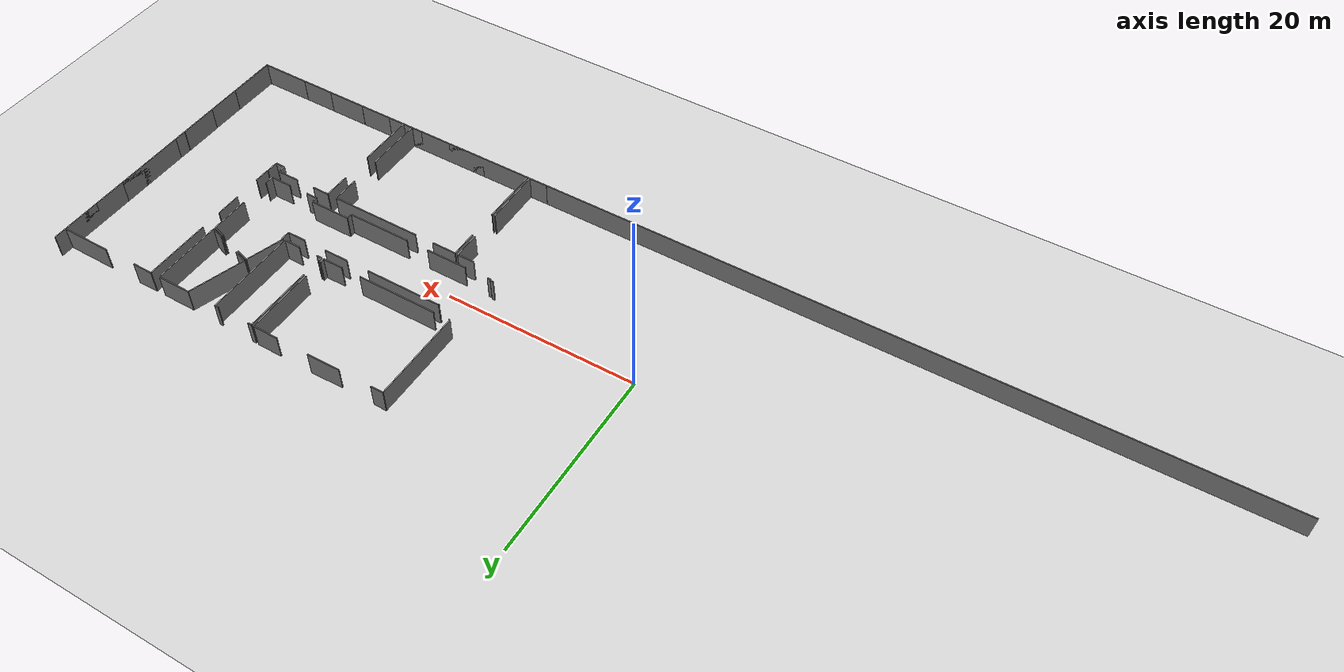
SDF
<sdf version="1.6">
 <world name="default">
  <model name="ground_plane">
   <static>1</static>
   <link name="link">
    <collision name="collision">
     <geometry><plane><normal>0 0 1</normal><size>100 100</size></plane></geometry>
     <surface><friction><ode><mu>100</mu><mu2>50</mu2></ode></friction></surface>
    </collision>
    <visual name="visual">
     <cast_shadows>0</cast_shadows>
     <geometry><plane><normal>0 0 1</normal><size>100 100</size></plane></geometry>
     <material>
      <script><uri>file://media/materials/scripts/gazebo.material</uri><name>Gazebo/Grey</name></script>
     </material>
    </visual>
   </link>
  </model>
  <model name="50056457">
   <static>1</static>
   <link name="Wall_172">
    <collision name="Wall_172_Collision">
     <geometry><box><size>1.95607429931 0.1 2.5</size></box></geometry>
     <pose>0.978037149657 0 1.25 0 0 0</pose>
    </collision>
    <visual name="Wall_172_Visual">
     <pose>0.978037149657 0 1.25 0 0 0</pose>
     <geometry><box><size>1.95607429931 0.1 2.5</size></box></geometry>
     <material>
      <script><uri>file://media/materials/scripts/gazebo.material</uri><name>Gazebo/Grey</name></script>
      <ambient>1 1 1 1</ambient>
     </material>
    </visual>
    <pose>75.9082862539 -30.0258336651 0 0 0 3.14159265359</pose>
   </link>
   <link name="Wall_180">
    <collision name="Wall_180_Collision">
     <geometry><box><size>1.83410551993 0.1 2.5</size></box></geometry>
     <pose>0.917052759967 0 1.25 0 0 0</pose>
    </collision>
    <visual name="Wall_180_Visual">
     <pose>0.917052759967 0 1.25 0 0 0</pose>
     <geometry><box><size>1.83410551993 0.1 2.5</size></box></geometry>
     <material>
      <script><uri>file://media/materials/scripts/gazebo.material</uri><name>Gazebo/Grey</name></script>
      <ambient>1 1 1 1</ambient>
     </material>
    </visual>
    <pose>74.0196335855 -17.9668482082 0 0 0 0.0</pose>
   </link>
   <link name="Wall_181">
    <collision name="Wall_181_Collision">
     <geometry><box><size>2.77750014823 0.1 2.5</size></box></geometry>
     <pose>1.38875007411 0 1.25 0 0 0</pose>
    </collision>
    <visual name="Wall_181_Visual">
     <pose>1.38875007411 0 1.25 0 0 0</pose>
     <geometry><box><size>2.77750014823 0.1 2.5</size></box></geometry>
     <material>
      <script><uri>file://media/materials/scripts/gazebo.material</uri><name>Gazebo/Grey</name></script>
      <ambient>1 1 1 1</ambient>
     </material>
    </visual>
    <pose>75.8537391054 -17.9668482082 0 0 0 -1.57079632679</pose>
   </link>
   <link name="Wall_182">
    <collision name="Wall_182_Collision">
     <geometry><box><size>6.07293498088 0.1 2.5</size></box></geometry>
     <pose>3.03646749044 0 1.25 0 0 0</pose>
    </collision>
    <visual name="Wall_182_Visual">
     <pose>3.03646749044 0 1.25 0 0 0</pose>
     <geometry><box><size>6.07293498088 0.1 2.5</size></box></geometry>
     <material>
      <script><uri>file://media/materials/scripts/gazebo.material</uri><name>Gazebo/Grey</name></script>
      <ambient>1 1 1 1</ambient>
     </material>
    </visual>
    <pose>75.8537391054 -23.9531436606 0 0 0 -1.56181419835</pose>
   </link>
   <link name="Wall_228">
    <collision name="Wall_228_Collision">
     <geometry><box><size>2.24964637524 0.1 2.5</size></box></geometry>
     <pose>1.12482318762 0 1.25 0 0 0</pose>
    </collision>
    <visual name="Wall_228_Visual">
     <pose>1.12482318762 0 1.25 0 0 0</pose>
     <geometry><box><size>2.24964637524 0.1 2.5</size></box></geometry>
     <material>
      <script><uri>file://media/materials/scripts/gazebo.material</uri><name>Gazebo/Grey</name></script>
      <ambient>1 1 1 1</ambient>
     </material>
    </visual>
    <pose>97.6016194743 -16.9924531818 0 0 0 3.14159265359</pose>
   </link>
   <link name="Wall_229">
    <collision name="Wall_229_Collision">
     <geometry><box><size>1.20393349314 0.1 2.5</size></box></geometry>
     <pose>0.601966746568 0 1.25 0 0 0</pose>
    </collision>
    <visual name="Wall_229_Visual">
     <pose>0.601966746568 0 1.25 0 0 0</pose>
     <geometry><box><size>1.20393349314 0.1 2.5</size></box></geometry>
     <material>
      <script><uri>file://media/materials/scripts/gazebo.material</uri><name>Gazebo/Grey</name></script>
      <ambient>1 1 1 1</ambient>
     </material>
    </visual>
    <pose>93.2261589152 -16.9924531818 0 0 0 3.14159265359</pose>
   </link>
   <link name="Wall_230">
    <collision name="Wall_230_Collision">
     <geometry><box><size>0.604592463346 0.1 2.5</size></box></geometry>
     <pose>0.302296231673 0 1.25 0 0 0</pose>
    </collision>
    <visual name="Wall_230_Visual">
     <pose>0.302296231673 0 1.25 0 0 0</pose>
     <geometry><box><size>0.604592463346 0.1 2.5</size></box></geometry>
     <material>
      <script><uri>file://media/materials/scripts/gazebo.material</uri><name>Gazebo/Grey</name></script>
      <ambient>1 1 1 1</ambient>
     </material>
    </visual>
    <pose>92.022225422 -16.9924531818 0 0 0 1.57079632679</pose>
   </link>
   <link name="Wall_231">
    <collision name="Wall_231_Collision">
     <geometry><box><size>4.30007707749 0.1 2.5</size></box></geometry>
     <pose>2.15003853875 0 1.25 0 0 0</pose>
    </collision>
    <visual name="Wall_231_Visual">
     <pose>2.15003853875 0 1.25 0 0 0</pose>
     <geometry><box><size>4.30007707749 0.1 2.5</size></box></geometry>
     <material>
      <script><uri>file://media/materials/scripts/gazebo.material</uri><name>Gazebo/Grey</name></script>
      <ambient>1 1 1 1</ambient>
     </material>
    </visual>
    <pose>92.022225422 -16.3878607184 0 0 0 3.14159265359</pose>
   </link>
   <link name="Wall_232">
    <collision name="Wall_232_Collision">
     <geometry><box><size>0.581215113965 0.1 2.5</size></box></geometry>
     <pose>0.290607556982 0 1.25 0 0 0</pose>
    </collision>
    <visual name="Wall_232_Visual">
     <pose>0.290607556982 0 1.25 0 0 0</pose>
     <geometry><box><size>0.581215113965 0.1 2.5</size></box></geometry>
     <material>
      <script><uri>file://media/materials/scripts/gazebo.material</uri><name>Gazebo/Grey</name></script>
      <ambient>1 1 1 1</ambient>
     </material>
    </visual>
    <pose>87.7221483445 -16.3878607184 0 0 0 -1.57079632679</pose>
   </link>
   <link name="Wall_233">
    <collision name="Wall_233_Collision">
     <geometry><box><size>6.72166555144 0.1 2.5</size></box></geometry>
     <pose>3.36083277572 0 1.25 0 0 0</pose>
    </collision>
    <visual name="Wall_233_Visual">
     <pose>3.36083277572 0 1.25 0 0 0</pose>
     <geometry><box><size>6.72166555144 0.1 2.5</size></box></geometry>
     <material>
      <script><uri>file://media/materials/scripts/gazebo.material</uri><name>Gazebo/Grey</name></script>
      <ambient>1 1 1 1</ambient>
     </material>
    </visual>
    <pose>87.7221483445 -16.9690758324 0 0 0 3.14159265359</pose>
   </link>
   <link name="Wall_234">
    <collision name="Wall_234_Collision">
     <geometry><box><size>4.32938346476 0.1 2.5</size></box></geometry>
     <pose>2.16469173238 0 1.25 0 0 0</pose>
    </collision>
    <visual name="Wall_234_Visual">
     <pose>2.16469173238 0 1.25 0 0 0</pose>
     <geometry><box><size>4.32938346476 0.1 2.5</size></box></geometry>
     <material>
      <script><uri>file://media/materials/scripts/gazebo.material</uri><name>Gazebo/Grey</name></script>
      <ambient>1 1 1 1</ambient>
     </material>
    </visual>
    <pose>78.6080313053 -16.9690758324 0 0 0 3.14159265359</pose>
   </link>
   <link name="Wall_235">
    <collision name="Wall_235_Collision">
     <geometry><box><size>0.421808695358 0.1 2.5</size></box></geometry>
     <pose>0.210904347679 0 1.25 0 0 0</pose>
    </collision>
    <visual name="Wall_235_Visual">
     <pose>0.210904347679 0 1.25 0 0 0</pose>
     <geometry><box><size>0.421808695358 0.1 2.5</size></box></geometry>
     <material>
      <script><uri>file://media/materials/scripts/gazebo.material</uri><name>Gazebo/Grey</name></script>
      <ambient>1 1 1 1</ambient>
     </material>
    </visual>
    <pose>71.7708342156 -16.9690758324 0 0 0 3.14159265359</pose>
   </link>
   <link name="Wall_236">
    <collision name="Wall_236_Collision">
     <geometry><box><size>0.108077890618 0.1 2.5</size></box></geometry>
     <pose>0.0540389453089 0 1.25 0 0 0</pose>
    </collision>
    <visual name="Wall_236_Visual">
     <pose>0.0540389453089 0 1.25 0 0 0</pose>
     <geometry><box><size>0.108077890618 0.1 2.5</size></box></geometry>
     <material>
      <script><uri>file://media/materials/scripts/gazebo.material</uri><name>Gazebo/Grey</name></script>
      <ambient>1 1 1 1</ambient>
     </material>
    </visual>
    <pose>71.3490255203 -16.9690758324 0 0 0 1.57079632679</pose>
   </link>
   <link name="Wall_237">
    <collision name="Wall_237_Collision">
     <geometry><box><size>0.314916612317 0.1 2.5</size></box></geometry>
     <pose>0.157458306159 0 1.25 0 0 0</pose>
    </collision>
    <visual name="Wall_237_Visual">
     <pose>0.157458306159 0 1.25 0 0 0</pose>
     <geometry><box><size>0.314916612317 0.1 2.5</size></box></geometry>
     <material>
      <script><uri>file://media/materials/scripts/gazebo.material</uri><name>Gazebo/Grey</name></script>
      <ambient>1 1 1 1</ambient>
     </material>
    </visual>
    <pose>71.3490255203 -16.8609979418 0 0 0 3.14159265359</pose>
   </link>
   <link name="Wall_241">
    <collision name="Wall_241_Collision">
     <geometry><box><size>0.0645418124222 0.1 2.5</size></box></geometry>
     <pose>0.0322709062111 0 1.25 0 0 0</pose>
    </collision>
    <visual name="Wall_241_Visual">
     <pose>0.0322709062111 0 1.25 0 0 0</pose>
     <geometry><box><size>0.0645418124222 0.1 2.5</size></box></geometry>
     <material>
      <script><uri>file://media/materials/scripts/gazebo.material</uri><name>Gazebo/Grey</name></script>
      <ambient>1 1 1 1</ambient>
     </material>
    </visual>
    <pose>73.6296722936 -12.0357775086 0 0 0 1.57079632679</pose>
   </link>
   <link name="Wall_242">
    <collision name="Wall_242_Collision">
     <geometry><box><size>8.07772121664 0.1 2.5</size></box></geometry>
     <pose>4.03886060832 0 1.25 0 0 0</pose>
    </collision>
    <visual name="Wall_242_Visual">
     <pose>4.03886060832 0 1.25 0 0 0</pose>
     <geometry><box><size>8.07772121664 0.1 2.5</size></box></geometry>
     <material>
      <script><uri>file://media/materials/scripts/gazebo.material</uri><name>Gazebo/Grey</name></script>
      <ambient>1 1 1 1</ambient>
     </material>
    </visual>
    <pose>73.6296722936 -11.9712356962 0 0 0 0.0</pose>
   </link>
   <link name="Wall_243">
    <collision name="Wall_243_Collision">
     <geometry><box><size>2.59810440189 0.1 2.5</size></box></geometry>
     <pose>1.29905220094 0 1.25 0 0 0</pose>
    </collision>
    <visual name="Wall_243_Visual">
     <pose>1.29905220094 0 1.25 0 0 0</pose>
     <geometry><box><size>2.59810440189 0.1 2.5</size></box></geometry>
     <material>
      <script><uri>file://media/materials/scripts/gazebo.material</uri><name>Gazebo/Grey</name></script>
      <ambient>1 1 1 1</ambient>
     </material>
    </visual>
    <pose>84.1850537425 -11.9712356962 0 0 0 0.0</pose>
   </link>
   <link name="Wall_244">
    <collision name="Wall_244_Collision">
     <geometry><box><size>1.97589422596 0.1 2.5</size></box></geometry>
     <pose>0.987947112982 0 1.25 0 0 0</pose>
    </collision>
    <visual name="Wall_244_Visual">
     <pose>0.987947112982 0 1.25 0 0 0</pose>
     <geometry><box><size>1.97589422596 0.1 2.5</size></box></geometry>
     <material>
      <script><uri>file://media/materials/scripts/gazebo.material</uri><name>Gazebo/Grey</name></script>
      <ambient>1 1 1 1</ambient>
     </material>
    </visual>
    <pose>89.2525177236 -11.9712356962 0 0 0 0.0</pose>
   </link>
   <link name="Wall_245">
    <collision name="Wall_245_Collision">
     <geometry><box><size>0.978121850199 0.1 2.5</size></box></geometry>
     <pose>0.489060925099 0 1.25 0 0 0</pose>
    </collision>
    <visual name="Wall_245_Visual">
     <pose>0.489060925099 0 1.25 0 0 0</pose>
     <geometry><box><size>0.978121850199 0.1 2.5</size></box></geometry>
     <material>
      <script><uri>file://media/materials/scripts/gazebo.material</uri><name>Gazebo/Grey</name></script>
      <ambient>1 1 1 1</ambient>
     </material>
    </visual>
    <pose>91.2284119496 -11.9712356962 0 0 0 1.57079632679</pose>
   </link>
   <link name="Wall_246">
    <collision name="Wall_246_Collision">
     <geometry><box><size>0.12603440536 0.1 2.5</size></box></geometry>
     <pose>0.0630172026799 0 1.25 0 0 0</pose>
    </collision>
    <visual name="Wall_246_Visual">
     <pose>0.0630172026799 0 1.25 0 0 0</pose>
     <geometry><box><size>0.12603440536 0.1 2.5</size></box></geometry>
     <material>
      <script><uri>file://media/materials/scripts/gazebo.material</uri><name>Gazebo/Grey</name></script>
      <ambient>1 1 1 1</ambient>
     </material>
    </visual>
    <pose>91.2284119496 -10.993113846 0 0 0 3.14159265359</pose>
   </link>
   <link name="Wall_247">
    <collision name="Wall_247_Collision">
     <geometry><box><size>3.96164129137 0.1 2.5</size></box></geometry>
     <pose>1.98082064568 0 1.25 0 0 0</pose>
    </collision>
    <visual name="Wall_247_Visual">
     <pose>1.98082064568 0 1.25 0 0 0</pose>
     <geometry><box><size>3.96164129137 0.1 2.5</size></box></geometry>
     <material>
      <script><uri>file://media/materials/scripts/gazebo.material</uri><name>Gazebo/Grey</name></script>
      <ambient>1 1 1 1</ambient>
     </material>
    </visual>
    <pose>91.1023775442 -10.993113846 0 0 0 1.26954656511</pose>
   </link>
   <link name="Wall_248">
    <collision name="Wall_248_Collision">
     <geometry><box><size>1.44781452431 0.1 2.5</size></box></geometry>
     <pose>0.723907262153 0 1.25 0 0 0</pose>
    </collision>
    <visual name="Wall_248_Visual">
     <pose>0.723907262153 0 1.25 0 0 0</pose>
     <geometry><box><size>1.44781452431 0.1 2.5</size></box></geometry>
     <material>
      <script><uri>file://media/materials/scripts/gazebo.material</uri><name>Gazebo/Grey</name></script>
      <ambient>1 1 1 1</ambient>
     </material>
    </visual>
    <pose>92.2778516555 -7.20987947113 0 0 0 -0.304692667171</pose>
   </link>
   <link name="Wall_249">
    <collision name="Wall_249_Collision">
     <geometry><box><size>1.45301427051 0.1 2.5</size></box></geometry>
     <pose>0.726507135254 0 1.25 0 0 0</pose>
    </collision>
    <visual name="Wall_249_Visual">
     <pose>0.726507135254 0 1.25 0 0 0</pose>
     <geometry><box><size>1.45301427051 0.1 2.5</size></box></geometry>
     <material>
      <script><uri>file://media/materials/scripts/gazebo.material</uri><name>Gazebo/Grey</name></script>
      <ambient>1 1 1 1</ambient>
     </material>
    </visual>
    <pose>96.2135470046 -8.43939252772 0 0 0 -0.284321077831</pose>
   </link>
   <link name="Wall_250">
    <collision name="Wall_250_Collision">
     <geometry><box><size>4.05918873822 0.1 2.5</size></box></geometry>
     <pose>2.02959436911 0 1.25 0 0 0</pose>
    </collision>
    <visual name="Wall_250_Visual">
     <pose>2.02959436911 0 1.25 0 0 0</pose>
     <geometry><box><size>4.05918873822 0.1 2.5</size></box></geometry>
     <material>
      <script><uri>file://media/materials/scripts/gazebo.material</uri><name>Gazebo/Grey</name></script>
      <ambient>1 1 1 1</ambient>
     </material>
    </visual>
    <pose>97.6082261166 -8.84697153215 0 0 0 -1.57079632679</pose>
   </link>
   <link name="Wall_251">
    <collision name="Wall_251_Collision">
     <geometry><box><size>0.924106521366 0.1 2.5</size></box></geometry>
     <pose>0.462053260683 0 1.25 0 0 0</pose>
    </collision>
    <visual name="Wall_251_Visual">
     <pose>0.462053260683 0 1.25 0 0 0</pose>
     <geometry><box><size>0.924106521366 0.1 2.5</size></box></geometry>
     <material>
      <script><uri>file://media/materials/scripts/gazebo.material</uri><name>Gazebo/Grey</name></script>
      <ambient>1 1 1 1</ambient>
     </material>
    </visual>
    <pose>97.6082261166 -16.0683702769 0 0 0 -1.5779456092</pose>
   </link>
   <link name="Wall_252">
    <collision name="Wall_252_Collision">
     <geometry><box><size>2.19425222127 0.1 2.5</size></box></geometry>
     <pose>1.09712611064 0 1.25 0 0 0</pose>
    </collision>
    <visual name="Wall_252_Visual">
     <pose>1.09712611064 0 1.25 0 0 0</pose>
     <geometry><box><size>2.19425222127 0.1 2.5</size></box></geometry>
     <material>
      <script><uri>file://media/materials/scripts/gazebo.material</uri><name>Gazebo/Grey</name></script>
      <ambient>1 1 1 1</ambient>
     </material>
    </visual>
    <pose>86.1961833936 -11.0080211413 0 0 0 3.14159265359</pose>
   </link>
   <link name="Wall_253">
    <collision name="Wall_253_Collision">
     <geometry><box><size>8.41008614045 0.1 2.5</size></box></geometry>
     <pose>4.20504307023 0 1.25 0 0 0</pose>
    </collision>
    <visual name="Wall_253_Visual">
     <pose>4.20504307023 0 1.25 0 0 0</pose>
     <geometry><box><size>8.41008614045 0.1 2.5</size></box></geometry>
     <material>
      <script><uri>file://media/materials/scripts/gazebo.material</uri><name>Gazebo/Grey</name></script>
      <ambient>1 1 1 1</ambient>
     </material>
    </visual>
    <pose>81.9011883486 -11.0080211413 0 0 0 3.14159265359</pose>
   </link>
   <link name="Wall_254">
    <collision name="Wall_254_Collision">
     <geometry><box><size>0.134673860566 0.1 2.5</size></box></geometry>
     <pose>0.067336930283 0 1.25 0 0 0</pose>
    </collision>
    <visual name="Wall_254_Visual">
     <pose>0.067336930283 0 1.25 0 0 0</pose>
     <geometry><box><size>0.134673860566 0.1 2.5</size></box></geometry>
     <material>
      <script><uri>file://media/materials/scripts/gazebo.material</uri><name>Gazebo/Grey</name></script>
      <ambient>1 1 1 1</ambient>
     </material>
    </visual>
    <pose>71.804545031 -11.0080211413 0 0 0 3.14159265359</pose>
   </link>
   <link name="Wall_255">
    <collision name="Wall_255_Collision">
     <geometry><box><size>9.65213487714 0.1 2.5</size></box></geometry>
     <pose>4.82606743857 0 1.25 0 0 0</pose>
    </collision>
    <visual name="Wall_255_Visual">
     <pose>4.82606743857 0 1.25 0 0 0</pose>
     <geometry><box><size>9.65213487714 0.1 2.5</size></box></geometry>
     <material>
      <script><uri>file://media/materials/scripts/gazebo.material</uri><name>Gazebo/Grey</name></script>
      <ambient>1 1 1 1</ambient>
     </material>
    </visual>
    <pose>71.6698711705 -11.0080211413 0 0 0 1.57079632679</pose>
   </link>
   <link name="Wall_256">
    <collision name="Wall_256_Collision">
     <geometry><box><size>1.33996256236 0.1 2.5</size></box></geometry>
     <pose>0.66998128118 0 1.25 0 0 0</pose>
    </collision>
    <visual name="Wall_256_Visual">
     <pose>0.66998128118 0 1.25 0 0 0</pose>
     <geometry><box><size>1.33996256236 0.1 2.5</size></box></geometry>
     <material>
      <script><uri>file://media/materials/scripts/gazebo.material</uri><name>Gazebo/Grey</name></script>
      <ambient>1 1 1 1</ambient>
     </material>
    </visual>
    <pose>71.6698711705 -1.35588626411 0 0 0 0.0</pose>
   </link>
   <link name="Wall_257">
    <collision name="Wall_257_Collision">
     <geometry><box><size>3.48623888644 0.1 2.5</size></box></geometry>
     <pose>1.74311944322 0 1.25 0 0 0</pose>
    </collision>
    <visual name="Wall_257_Visual">
     <pose>1.74311944322 0 1.25 0 0 0</pose>
     <geometry><box><size>3.48623888644 0.1 2.5</size></box></geometry>
     <material>
      <script><uri>file://media/materials/scripts/gazebo.material</uri><name>Gazebo/Grey</name></script>
      <ambient>1 1 1 1</ambient>
     </material>
    </visual>
    <pose>76.4969550155 -1.35588626411 0 0 0 0.0191947651474</pose>
   </link>
   <link name="Wall_258">
    <collision name="Wall_258_Collision">
     <geometry><box><size>2.69505506118 0.1 2.5</size></box></geometry>
     <pose>1.34752753059 0 1.25 0 0 0</pose>
    </collision>
    <visual name="Wall_258_Visual">
     <pose>1.34752753059 0 1.25 0 0 0</pose>
     <geometry><box><size>2.69505506118 0.1 2.5</size></box></geometry>
     <material>
      <script><uri>file://media/materials/scripts/gazebo.material</uri><name>Gazebo/Grey</name></script>
      <ambient>1 1 1 1</ambient>
     </material>
    </visual>
    <pose>83.4947443314 -1.31421359782 0 0 0 -0.00628566742155</pose>
   </link>
   <link name="Wall_259">
    <collision name="Wall_259_Collision">
     <geometry><box><size>7.15956734964 0.1 2.5</size></box></geometry>
     <pose>3.57978367482 0 1.25 0 0 0</pose>
    </collision>
    <visual name="Wall_259_Visual">
     <pose>3.57978367482 0 1.25 0 0 0</pose>
     <geometry><box><size>7.15956734964 0.1 2.5</size></box></geometry>
     <material>
      <script><uri>file://media/materials/scripts/gazebo.material</uri><name>Gazebo/Grey</name></script>
      <ambient>1 1 1 1</ambient>
     </material>
    </visual>
    <pose>86.1897461525 -1.33115370607 0 0 0 -1.57079632679</pose>
   </link>
   <link name="Wall_260">
    <collision name="Wall_260_Collision">
     <geometry><box><size>0.48961144748 0.1 2.5</size></box></geometry>
     <pose>0.24480572374 0 1.25 0 0 0</pose>
    </collision>
    <visual name="Wall_260_Visual">
     <pose>0.24480572374 0 1.25 0 0 0</pose>
     <geometry><box><size>0.48961144748 0.1 2.5</size></box></geometry>
     <material>
      <script><uri>file://media/materials/scripts/gazebo.material</uri><name>Gazebo/Grey</name></script>
      <ambient>1 1 1 1</ambient>
     </material>
    </visual>
    <pose>86.1897461525 -10.5184520129 0 0 0 -1.55764829556</pose>
   </link>
   <link name="Wall_261">
    <collision name="Wall_261_Collision">
     <geometry><box><size>1.74872737437 0.1 2.5</size></box></geometry>
     <pose>0.874363687184 0 1.25 0 0 0</pose>
    </collision>
    <visual name="Wall_261_Visual">
     <pose>0.874363687184 0 1.25 0 0 0</pose>
     <geometry><box><size>1.74872737437 0.1 2.5</size></box></geometry>
     <material>
      <script><uri>file://media/materials/scripts/gazebo.material</uri><name>Gazebo/Grey</name></script>
      <ambient>1 1 1 1</ambient>
     </material>
    </visual>
    <pose>90.8520027443 -11.0192016127 0 0 0 3.14159265359</pose>
   </link>
   <link name="Wall_262">
    <collision name="Wall_262_Collision">
     <geometry><box><size>0.534629816285 0.1 2.5</size></box></geometry>
     <pose>0.267314908142 0 1.25 0 0 0</pose>
    </collision>
    <visual name="Wall_262_Visual">
     <pose>0.267314908142 0 1.25 0 0 0</pose>
     <geometry><box><size>0.534629816285 0.1 2.5</size></box></geometry>
     <material>
      <script><uri>file://media/materials/scripts/gazebo.material</uri><name>Gazebo/Grey</name></script>
      <ambient>1 1 1 1</ambient>
     </material>
    </visual>
    <pose>86.9871170477 -11.0192016127 0 0 0 3.14159265359</pose>
   </link>
   <link name="Wall_263">
    <collision name="Wall_263_Collision">
     <geometry><box><size>0.478896860151 0.1 2.5</size></box></geometry>
     <pose>0.239448430075 0 1.25 0 0 0</pose>
    </collision>
    <visual name="Wall_263_Visual">
     <pose>0.239448430075 0 1.25 0 0 0</pose>
     <geometry><box><size>0.478896860151 0.1 2.5</size></box></geometry>
     <material>
      <script><uri>file://media/materials/scripts/gazebo.material</uri><name>Gazebo/Grey</name></script>
      <ambient>1 1 1 1</ambient>
     </material>
    </visual>
    <pose>86.4524872314 -11.0192016127 0 0 0 1.57079632679</pose>
   </link>
   <link name="Wall_264">
    <collision name="Wall_264_Collision">
     <geometry><box><size>7.18802673149 0.1 2.5</size></box></geometry>
     <pose>3.59401336575 0 1.25 0 0 0</pose>
    </collision>
    <visual name="Wall_264_Visual">
     <pose>3.59401336575 0 1.25 0 0 0</pose>
     <geometry><box><size>7.18802673149 0.1 2.5</size></box></geometry>
     <material>
      <script><uri>file://media/materials/scripts/gazebo.material</uri><name>Gazebo/Grey</name></script>
      <ambient>1 1 1 1</ambient>
     </material>
    </visual>
    <pose>86.4524872314 -8.54476000102 0 0 0 1.57079632679</pose>
   </link>
   <link name="Wall_265">
    <collision name="Wall_265_Collision">
     <geometry><box><size>0.459415735667 0.1 2.5</size></box></geometry>
     <pose>0.229707867833 0 1.25 0 0 0</pose>
    </collision>
    <visual name="Wall_265_Visual">
     <pose>0.229707867833 0 1.25 0 0 0</pose>
     <geometry><box><size>0.459415735667 0.1 2.5</size></box></geometry>
     <material>
      <script><uri>file://media/materials/scripts/gazebo.material</uri><name>Gazebo/Grey</name></script>
      <ambient>1 1 1 1</ambient>
     </material>
    </visual>
    <pose>86.4524872314 -1.35673326953 0 0 0 0.0</pose>
   </link>
   <link name="Wall_266">
    <collision name="Wall_266_Collision">
     <geometry><box><size>0.395382126492 0.1 2.5</size></box></geometry>
     <pose>0.197691063246 0 1.25 0 0 0</pose>
    </collision>
    <visual name="Wall_266_Visual">
     <pose>0.197691063246 0 1.25 0 0 0</pose>
     <geometry><box><size>0.395382126492 0.1 2.5</size></box></geometry>
     <material>
      <script><uri>file://media/materials/scripts/gazebo.material</uri><name>Gazebo/Grey</name></script>
      <ambient>1 1 1 1</ambient>
     </material>
    </visual>
    <pose>90.4273142305 -1.35673326953 0 0 0 0.0</pose>
   </link>
   <link name="Wall_267">
    <collision name="Wall_267_Collision">
     <geometry><box><size>9.66251278639 0.1 2.5</size></box></geometry>
     <pose>4.83125639319 0 1.25 0 0 0</pose>
    </collision>
    <visual name="Wall_267_Visual">
     <pose>4.83125639319 0 1.25 0 0 0</pose>
     <geometry><box><size>9.66251278639 0.1 2.5</size></box></geometry>
     <material>
      <script><uri>file://media/materials/scripts/gazebo.material</uri><name>Gazebo/Grey</name></script>
      <ambient>1 1 1 1</ambient>
     </material>
    </visual>
    <pose>90.822696357 -1.35673326953 0 0 0 -1.5677633236</pose>
   </link>
   <link name="Wall_268">
    <collision name="Wall_268_Collision">
     <geometry><box><size>1.18580757731 0.1 2.5</size></box></geometry>
     <pose>0.592903788655 0 1.25 0 0 0</pose>
    </collision>
    <visual name="Wall_268_Visual">
     <pose>0.592903788655 0 1.25 0 0 0</pose>
     <geometry><box><size>1.18580757731 0.1 2.5</size></box></geometry>
     <material>
      <script><uri>file://media/materials/scripts/gazebo.material</uri><name>Gazebo/Grey</name></script>
      <ambient>1 1 1 1</ambient>
     </material>
    </visual>
    <pose>90.3512531445 -30.0363365322 0 0 0 3.14159265359</pose>
   </link>
   <link name="Wall_269">
    <collision name="Wall_269_Collision">
     <geometry><box><size>4.1211895344 0.1 2.5</size></box></geometry>
     <pose>2.0605947672 0 1.25 0 0 0</pose>
    </collision>
    <visual name="Wall_269_Visual">
     <pose>2.0605947672 0 1.25 0 0 0</pose>
     <geometry><box><size>4.1211895344 0.1 2.5</size></box></geometry>
     <material>
      <script><uri>file://media/materials/scripts/gazebo.material</uri><name>Gazebo/Grey</name></script>
      <ambient>1 1 1 1</ambient>
     </material>
    </visual>
    <pose>85.6949255906 -30.0363365322 0 0 0 3.14159265359</pose>
   </link>
   <link name="Wall_270">
    <collision name="Wall_270_Collision">
     <geometry><box><size>1.90457637024 0.1 2.5</size></box></geometry>
     <pose>0.952288185122 0 1.25 0 0 0</pose>
    </collision>
    <visual name="Wall_270_Visual">
     <pose>0.952288185122 0 1.25 0 0 0</pose>
     <geometry><box><size>1.90457637024 0.1 2.5</size></box></geometry>
     <material>
      <script><uri>file://media/materials/scripts/gazebo.material</uri><name>Gazebo/Grey</name></script>
      <ambient>1 1 1 1</ambient>
     </material>
    </visual>
    <pose>78.0762813074 -30.0363365322 0 0 0 3.14159265359</pose>
   </link>
   <link name="Wall_271">
    <collision name="Wall_271_Collision">
     <geometry><box><size>6.07438401531 0.1 2.5</size></box></geometry>
     <pose>3.03719200766 0 1.25 0 0 0</pose>
    </collision>
    <visual name="Wall_271_Visual">
     <pose>3.03719200766 0 1.25 0 0 0</pose>
     <geometry><box><size>6.07438401531 0.1 2.5</size></box></geometry>
     <material>
      <script><uri>file://media/materials/scripts/gazebo.material</uri><name>Gazebo/Grey</name></script>
      <ambient>1 1 1 1</ambient>
     </material>
    </visual>
    <pose>76.1717049372 -30.0363365322 0 0 0 1.57079632679</pose>
   </link>
   <link name="Wall_272">
    <collision name="Wall_272_Collision">
     <geometry><box><size>2.80680653549 0.1 2.5</size></box></geometry>
     <pose>1.40340326775 0 1.25 0 0 0</pose>
    </collision>
    <visual name="Wall_272_Visual">
     <pose>1.40340326775 0 1.25 0 0 0</pose>
     <geometry><box><size>2.80680653549 0.1 2.5</size></box></geometry>
     <material>
      <script><uri>file://media/materials/scripts/gazebo.material</uri><name>Gazebo/Grey</name></script>
      <ambient>1 1 1 1</ambient>
     </material>
    </visual>
    <pose>76.1717049372 -20.7987261039 0 0 0 1.57079632679</pose>
   </link>
   <link name="Wall_273">
    <collision name="Wall_273_Collision">
     <geometry><box><size>2.60640505493 0.1 2.5</size></box></geometry>
     <pose>1.30320252746 0 1.25 0 0 0</pose>
    </collision>
    <visual name="Wall_273_Visual">
     <pose>1.30320252746 0 1.25 0 0 0</pose>
     <geometry><box><size>2.60640505493 0.1 2.5</size></box></geometry>
     <material>
      <script><uri>file://media/materials/scripts/gazebo.material</uri><name>Gazebo/Grey</name></script>
      <ambient>1 1 1 1</ambient>
     </material>
    </visual>
    <pose>76.1717049372 -17.9919195684 0 0 0 0.0</pose>
   </link>
   <link name="Wall_274">
    <collision name="Wall_274_Collision">
     <geometry><box><size>9.57505738462 0.1 2.5</size></box></geometry>
     <pose>4.78752869231 0 1.25 0 0 0</pose>
    </collision>
    <visual name="Wall_274_Visual">
     <pose>4.78752869231 0 1.25 0 0 0</pose>
     <geometry><box><size>9.57505738462 0.1 2.5</size></box></geometry>
     <material>
      <script><uri>file://media/materials/scripts/gazebo.material</uri><name>Gazebo/Grey</name></script>
      <ambient>1 1 1 1</ambient>
     </material>
    </visual>
    <pose>80.7819553967 -17.9919195684 0 0 0 0.0</pose>
   </link>
   <link name="Wall_275">
    <collision name="Wall_275_Collision">
     <geometry><box><size>2.79850588245 0.1 2.5</size></box></geometry>
     <pose>1.39925294123 0 1.25 0 0 0</pose>
    </collision>
    <visual name="Wall_275_Visual">
     <pose>1.39925294123 0 1.25 0 0 0</pose>
     <geometry><box><size>2.79850588245 0.1 2.5</size></box></geometry>
     <material>
      <script><uri>file://media/materials/scripts/gazebo.material</uri><name>Gazebo/Grey</name></script>
      <ambient>1 1 1 1</ambient>
     </material>
    </visual>
    <pose>90.3570127813 -17.9919195684 0 0 0 -1.57079632679</pose>
   </link>
   <link name="Wall_276">
    <collision name="Wall_276_Collision">
     <geometry><box><size>6.0298342814 0.1 2.5</size></box></geometry>
     <pose>3.0149171407 0 1.25 0 0 0</pose>
    </collision>
    <visual name="Wall_276_Visual">
     <pose>3.0149171407 0 1.25 0 0 0</pose>
     <geometry><box><size>6.0298342814 0.1 2.5</size></box></geometry>
     <material>
      <script><uri>file://media/materials/scripts/gazebo.material</uri><name>Gazebo/Grey</name></script>
      <ambient>1 1 1 1</ambient>
     </material>
    </visual>
    <pose>90.3570127813 -24.0065050016 0 0 0 -1.57175151684</pose>
   </link>
   <link name="Wall_277">
    <collision name="Wall_277_Collision">
     <geometry><box><size>5.14928470393 0.1 2.5</size></box></geometry>
     <pose>2.57464235196 0 1.25 0 0 0</pose>
    </collision>
    <visual name="Wall_277_Visual">
     <pose>2.57464235196 0 1.25 0 0 0</pose>
     <geometry><box><size>5.14928470393 0.1 2.5</size></box></geometry>
     <material>
      <script><uri>file://media/materials/scripts/gazebo.material</uri><name>Gazebo/Grey</name></script>
      <ambient>1 1 1 1</ambient>
     </material>
    </visual>
    <pose>109.569467149 -30.0290522856 0 0 0 3.14159265359</pose>
   </link>
   <link name="Wall_278">
    <collision name="Wall_278_Collision">
     <geometry><box><size>4.14541388919 0.1 2.5</size></box></geometry>
     <pose>2.0727069446 0 1.25 0 0 0</pose>
    </collision>
    <visual name="Wall_278_Visual">
     <pose>2.0727069446 0 1.25 0 0 0</pose>
     <geometry><box><size>4.14541388919 0.1 2.5</size></box></geometry>
     <material>
      <script><uri>file://media/materials/scripts/gazebo.material</uri><name>Gazebo/Grey</name></script>
      <ambient>1 1 1 1</ambient>
     </material>
    </visual>
    <pose>100.91391884 -30.0290522856 0 0 0 3.14159265359</pose>
   </link>
   <link name="Wall_279">
    <collision name="Wall_279_Collision">
     <geometry><box><size>1.85968508339 0.1 2.5</size></box></geometry>
     <pose>0.929842541694 0 1.25 0 0 0</pose>
    </collision>
    <visual name="Wall_279_Visual">
     <pose>0.929842541694 0 1.25 0 0 0</pose>
     <geometry><box><size>1.85968508339 0.1 2.5</size></box></geometry>
     <material>
      <script><uri>file://media/materials/scripts/gazebo.material</uri><name>Gazebo/Grey</name></script>
      <ambient>1 1 1 1</ambient>
     </material>
    </visual>
    <pose>93.2720666085 -30.0290522856 0 0 0 3.14159265359</pose>
   </link>
   <link name="Wall_280">
    <collision name="Wall_280_Collision">
     <geometry><box><size>5.93140950171 0.1 2.5</size></box></geometry>
     <pose>2.96570475085 0 1.25 0 0 0</pose>
    </collision>
    <visual name="Wall_280_Visual">
     <pose>2.96570475085 0 1.25 0 0 0</pose>
     <geometry><box><size>5.93140950171 0.1 2.5</size></box></geometry>
     <material>
      <script><uri>file://media/materials/scripts/gazebo.material</uri><name>Gazebo/Grey</name></script>
      <ambient>1 1 1 1</ambient>
     </material>
    </visual>
    <pose>91.4123815251 -30.0290522856 0 0 0 1.57079632679</pose>
   </link>
   <link name="Wall_281">
    <collision name="Wall_281_Collision">
     <geometry><box><size>2.72515521374 0.1 2.5</size></box></geometry>
     <pose>1.36257760687 0 1.25 0 0 0</pose>
    </collision>
    <visual name="Wall_281_Visual">
     <pose>1.36257760687 0 1.25 0 0 0</pose>
     <geometry><box><size>2.72515521374 0.1 2.5</size></box></geometry>
     <material>
      <script><uri>file://media/materials/scripts/gazebo.material</uri><name>Gazebo/Grey</name></script>
      <ambient>1 1 1 1</ambient>
     </material>
    </visual>
    <pose>91.4123815251 -20.7208016059 0 0 0 1.57079632679</pose>
   </link>
   <link name="Wall_282">
    <collision name="Wall_282_Collision">
     <geometry><box><size>1.80174991318 0.1 2.5</size></box></geometry>
     <pose>0.900874956591 0 1.25 0 0 0</pose>
    </collision>
    <visual name="Wall_282_Visual">
     <pose>0.900874956591 0 1.25 0 0 0</pose>
     <geometry><box><size>1.80174991318 0.1 2.5</size></box></geometry>
     <material>
      <script><uri>file://media/materials/scripts/gazebo.material</uri><name>Gazebo/Grey</name></script>
      <ambient>1 1 1 1</ambient>
     </material>
    </visual>
    <pose>91.4123815251 -17.9956463922 0 0 0 0.0</pose>
   </link>
   <link name="Wall_283">
    <collision name="Wall_283_Collision">
     <geometry><box><size>2.29555406859 0.1 2.5</size></box></geometry>
     <pose>1.1477770343 0 1.25 0 0 0</pose>
    </collision>
    <visual name="Wall_283_Visual">
     <pose>1.1477770343 0 1.25 0 0 0</pose>
     <geometry><box><size>2.29555406859 0.1 2.5</size></box></geometry>
     <material>
      <script><uri>file://media/materials/scripts/gazebo.material</uri><name>Gazebo/Grey</name></script>
      <ambient>1 1 1 1</ambient>
     </material>
    </visual>
    <pose>95.2857372759 -17.9956463922 0 0 0 0.0</pose>
   </link>
   <link name="Wall_284">
    <collision name="Wall_284_Collision">
     <geometry><box><size>0.770944326334 0.1 2.5</size></box></geometry>
     <pose>0.385472163167 0 1.25 0 0 0</pose>
    </collision>
    <visual name="Wall_284_Visual">
     <pose>0.385472163167 0 1.25 0 0 0</pose>
     <geometry><box><size>0.770944326334 0.1 2.5</size></box></geometry>
     <material>
      <script><uri>file://media/materials/scripts/gazebo.material</uri><name>Gazebo/Grey</name></script>
      <ambient>1 1 1 1</ambient>
     </material>
    </visual>
    <pose>97.5812913445 -17.9956463922 0 0 0 -1.57079632679</pose>
   </link>
   <link name="Wall_285">
    <collision name="Wall_285_Collision">
     <geometry><box><size>1.02470714788 0.1 2.5</size></box></geometry>
     <pose>0.512353573939 0 1.25 0 0 0</pose>
    </collision>
    <visual name="Wall_285_Visual">
     <pose>0.512353573939 0 1.25 0 0 0</pose>
     <geometry><box><size>1.02470714788 0.1 2.5</size></box></geometry>
     <material>
      <script><uri>file://media/materials/scripts/gazebo.material</uri><name>Gazebo/Grey</name></script>
      <ambient>1 1 1 1</ambient>
     </material>
    </visual>
    <pose>97.5812913445 -18.7665907185 0 0 0 0.0</pose>
   </link>
   <link name="Wall_286">
    <collision name="Wall_286_Collision">
     <geometry><box><size>1.25865004277 0.1 2.5</size></box></geometry>
     <pose>0.629325021387 0 1.25 0 0 0</pose>
    </collision>
    <visual name="Wall_286_Visual">
     <pose>0.629325021387 0 1.25 0 0 0</pose>
     <geometry><box><size>1.25865004277 0.1 2.5</size></box></geometry>
     <material>
      <script><uri>file://media/materials/scripts/gazebo.material</uri><name>Gazebo/Grey</name></script>
      <ambient>1 1 1 1</ambient>
     </material>
    </visual>
    <pose>98.6059984923 -18.7665907185 0 0 0 1.57079632679</pose>
   </link>
   <link name="Wall_287">
    <collision name="Wall_287_Collision">
     <geometry><box><size>3.99972895827 0.1 2.5</size></box></geometry>
     <pose>1.99986447913 0 1.25 0 0 0</pose>
    </collision>
    <visual name="Wall_287_Visual">
     <pose>1.99986447913 0 1.25 0 0 0</pose>
     <geometry><box><size>3.99972895827 0.1 2.5</size></box></geometry>
     <material>
      <script><uri>file://media/materials/scripts/gazebo.material</uri><name>Gazebo/Grey</name></script>
      <ambient>1 1 1 1</ambient>
     </material>
    </visual>
    <pose>109.613680831 -17.5079406757 0 0 0 -1.57079632679</pose>
   </link>
   <link name="Wall_288">
    <collision name="Wall_288_Collision">
     <geometry><box><size>5.01192604856 0.1 2.5</size></box></geometry>
     <pose>2.50596302428 0 1.25 0 0 0</pose>
    </collision>
    <visual name="Wall_288_Visual">
     <pose>2.50596302428 0 1.25 0 0 0</pose>
     <geometry><box><size>5.01192604856 0.1 2.5</size></box></geometry>
     <material>
      <script><uri>file://media/materials/scripts/gazebo.material</uri><name>Gazebo/Grey</name></script>
      <ambient>1 1 1 1</ambient>
     </material>
    </visual>
    <pose>109.613680831 -25.0173212607 0 0 0 -1.57961813613</pose>
   </link>
   <link name="Wall_289">
    <collision name="Wall_289_Collision">
     <geometry><box><size>1.57271964968 0.1 2.5</size></box></geometry>
     <pose>0.786359824839 0 1.25 0 0 0</pose>
    </collision>
    <visual name="Wall_289_Visual">
     <pose>0.786359824839 0 1.25 0 0 0</pose>
     <geometry><box><size>1.57271964968 0.1 2.5</size></box></geometry>
     <material>
      <script><uri>file://media/materials/scripts/gazebo.material</uri><name>Gazebo/Grey</name></script>
      <ambient>1 1 1 1</ambient>
     </material>
    </visual>
    <pose>98.6444525381 -17.457120351 0 0 0 1.57079632679</pose>
   </link>
   <link name="Wall_290">
    <collision name="Wall_290_Collision">
     <geometry><box><size>2.58810973802 0.1 2.5</size></box></geometry>
     <pose>1.29405486901 0 1.25 0 0 0</pose>
    </collision>
    <visual name="Wall_290_Visual">
     <pose>1.29405486901 0 1.25 0 0 0</pose>
     <geometry><box><size>2.58810973802 0.1 2.5</size></box></geometry>
     <material>
      <script><uri>file://media/materials/scripts/gazebo.material</uri><name>Gazebo/Grey</name></script>
      <ambient>1 1 1 1</ambient>
     </material>
    </visual>
    <pose>98.6444525381 -13.0909768513 0 0 0 1.57079632679</pose>
   </link>
   <link name="Wall_291">
    <collision name="Wall_291_Collision">
     <geometry><box><size>6.9366355251 0.1 2.5</size></box></geometry>
     <pose>3.46831776255 0 1.25 0 0 0</pose>
    </collision>
    <visual name="Wall_291_Visual">
     <pose>3.46831776255 0 1.25 0 0 0</pose>
     <geometry><box><size>6.9366355251 0.1 2.5</size></box></geometry>
     <material>
      <script><uri>file://media/materials/scripts/gazebo.material</uri><name>Gazebo/Grey</name></script>
      <ambient>1 1 1 1</ambient>
     </material>
    </visual>
    <pose>98.6444525381 -8.2877785589 0 0 0 1.57079632679</pose>
   </link>
   <link name="Wall_292">
    <collision name="Wall_292_Collision">
     <geometry><box><size>2.16528463617 0.1 2.5</size></box></geometry>
     <pose>1.08264231808 0 1.25 0 0 0</pose>
    </collision>
    <visual name="Wall_292_Visual">
     <pose>1.08264231808 0 1.25 0 0 0</pose>
     <geometry><box><size>2.16528463617 0.1 2.5</size></box></geometry>
     <material>
      <script><uri>file://media/materials/scripts/gazebo.material</uri><name>Gazebo/Grey</name></script>
      <ambient>1 1 1 1</ambient>
     </material>
    </visual>
    <pose>98.6444525381 -1.3511430338 0 0 0 0.0</pose>
   </link>
   <link name="Wall_293">
    <collision name="Wall_293_Collision">
     <geometry><box><size>5.29073460779 0.1 2.5</size></box></geometry>
     <pose>2.6453673039 0 1.25 0 0 0</pose>
    </collision>
    <visual name="Wall_293_Visual">
     <pose>2.6453673039 0 1.25 0 0 0</pose>
     <geometry><box><size>5.29073460779 0.1 2.5</size></box></geometry>
     <material>
      <script><uri>file://media/materials/scripts/gazebo.material</uri><name>Gazebo/Grey</name></script>
      <ambient>1 1 1 1</ambient>
     </material>
    </visual>
    <pose>104.340733337 -1.3511430338 0 0 0 0.0</pose>
   </link>
   <link name="Wall_294">
    <collision name="Wall_294_Collision">
     <geometry><box><size>3.94297959564 0.1 2.5</size></box></geometry>
     <pose>1.97148979782 0 1.25 0 0 0</pose>
    </collision>
    <visual name="Wall_294_Visual">
     <pose>1.97148979782 0 1.25 0 0 0</pose>
     <geometry><box><size>3.94297959564 0.1 2.5</size></box></geometry>
     <material>
      <script><uri>file://media/materials/scripts/gazebo.material</uri><name>Gazebo/Grey</name></script>
      <ambient>1 1 1 1</ambient>
     </material>
    </visual>
    <pose>109.631467945 -1.3511430338 0 0 0 -1.57079632679</pose>
   </link>
   <link name="Wall_295">
    <collision name="Wall_295_Collision">
     <geometry><box><size>3.94026917832 0.1 2.5</size></box></geometry>
     <pose>1.97013458916 0 1.25 0 0 0</pose>
    </collision>
    <visual name="Wall_295_Visual">
     <pose>1.97013458916 0 1.25 0 0 0</pose>
     <geometry><box><size>3.94026917832 0.1 2.5</size></box></geometry>
     <material>
      <script><uri>file://media/materials/scripts/gazebo.material</uri><name>Gazebo/Grey</name></script>
      <ambient>1 1 1 1</ambient>
     </material>
    </visual>
    <pose>109.631467945 -8.78039690674 0 0 0 -1.57079632679</pose>
   </link>
   <link name="Wall_296">
    <collision name="Wall_296_Collision">
     <geometry><box><size>1.2524321078 0.1 2.5</size></box></geometry>
     <pose>0.626216053898 0 1.25 0 0 0</pose>
    </collision>
    <visual name="Wall_296_Visual">
     <pose>0.626216053898 0 1.25 0 0 0</pose>
     <geometry><box><size>1.2524321078 0.1 2.5</size></box></geometry>
     <material>
      <script><uri>file://media/materials/scripts/gazebo.material</uri><name>Gazebo/Grey</name></script>
      <ambient>1 1 1 1</ambient>
     </material>
    </visual>
    <pose>109.631467945 -16.2047381483 0 0 0 -1.57972345336</pose>
   </link>
   <link name="Wall_297">
    <collision name="Wall_297_Collision">
     <geometry><box><size>7.26544302618 0.1 2.5</size></box></geometry>
     <pose>3.63272151309 0 1.25 0 0 0</pose>
    </collision>
    <visual name="Wall_297_Visual">
     <pose>3.63272151309 0 1.25 0 0 0</pose>
     <geometry><box><size>7.26544302618 0.1 2.5</size></box></geometry>
     <material>
      <script><uri>file://media/materials/scripts/gazebo.material</uri><name>Gazebo/Grey</name></script>
      <ambient>1 1 1 1</ambient>
     </material>
    </visual>
    <pose>97.6102589296 -8.64995807323 0 0 0 1.57079632679</pose>
   </link>
   <link name="Wall_298">
    <collision name="Wall_298_Collision">
     <geometry><box><size>3.53726400312 0.1 2.5</size></box></geometry>
     <pose>1.76863200156 0 1.25 0 0 0</pose>
    </collision>
    <visual name="Wall_298_Visual">
     <pose>1.76863200156 0 1.25 0 0 0</pose>
     <geometry><box><size>3.53726400312 0.1 2.5</size></box></geometry>
     <material>
      <script><uri>file://media/materials/scripts/gazebo.material</uri><name>Gazebo/Grey</name></script>
      <ambient>1 1 1 1</ambient>
     </material>
    </visual>
    <pose>97.6102589296 -1.38451504705 0 0 0 3.14159265359</pose>
   </link>
   <link name="Wall_299">
    <collision name="Wall_299_Collision">
     <geometry><box><size>5.89424637757 0.1 2.5</size></box></geometry>
     <pose>2.94712318878 0 1.25 0 0 0</pose>
    </collision>
    <visual name="Wall_299_Visual">
     <pose>2.94712318878 0 1.25 0 0 0</pose>
     <geometry><box><size>5.89424637757 0.1 2.5</size></box></geometry>
     <material>
      <script><uri>file://media/materials/scripts/gazebo.material</uri><name>Gazebo/Grey</name></script>
      <ambient>1 1 1 1</ambient>
     </material>
    </visual>
    <pose>94.0729949264 -1.38451504705 0 0 0 -1.87433270109</pose>
   </link>
   <link name="Wall_300">
    <collision name="Wall_300_Collision">
     <geometry><box><size>1.46921091036 0.1 2.5</size></box></geometry>
     <pose>0.734605455182 0 1.25 0 0 0</pose>
    </collision>
    <visual name="Wall_300_Visual">
     <pose>0.734605455182 0 1.25 0 0 0</pose>
     <geometry><box><size>1.46921091036 0.1 2.5</size></box></geometry>
     <material>
      <script><uri>file://media/materials/scripts/gazebo.material</uri><name>Gazebo/Grey</name></script>
      <ambient>1 1 1 1</ambient>
     </material>
    </visual>
    <pose>92.3112236687 -7.00930858948 0 0 0 -0.300236733423</pose>
   </link>
   <link name="Wall_301">
    <collision name="Wall_301_Collision">
     <geometry><box><size>1.41422249224 0.1 2.5</size></box></geometry>
     <pose>0.707111246122 0 1.25 0 0 0</pose>
    </collision>
    <visual name="Wall_301_Visual">
     <pose>0.707111246122 0 1.25 0 0 0</pose>
     <geometry><box><size>1.41422249224 0.1 2.5</size></box></geometry>
     <material>
      <script><uri>file://media/materials/scripts/gazebo.material</uri><name>Gazebo/Grey</name></script>
      <ambient>1 1 1 1</ambient>
     </material>
    </visual>
    <pose>96.2580994893 -8.2356030255 0 0 0 -0.297354061985</pose>
   </link>
   <link name="Wall_302">
    <collision name="Wall_302_Collision">
     <geometry><box><size>30.0363365322 0.1 2.5</size></box></geometry>
     <pose>15.0181682661 0 1.25 0 0 0</pose>
    </collision>
    <visual name="Wall_302_Visual">
     <pose>15.0181682661 0 1.25 0 0 0</pose>
     <geometry><box><size>30.0363365322 0.1 2.5</size></box></geometry>
     <material>
      <script><uri>file://media/materials/scripts/gazebo.material</uri><name>Gazebo/Grey</name></script>
      <ambient>1 1 1 1</ambient>
     </material>
    </visual>
    <pose>109.631467945 -30.0363365322 0 0 0 1.57079632679</pose>
   </link>
   <link name="Wall_303">
    <collision name="Wall_303_Collision">
     <geometry><box><size>109.631467945 0.1 2.5</size></box></geometry>
     <pose>54.8157339725 0 1.25 0 0 0</pose>
    </collision>
    <visual name="Wall_303_Visual">
     <pose>54.8157339725 0 1.25 0 0 0</pose>
     <geometry><box><size>109.631467945 0.1 2.5</size></box></geometry>
     <material>
      <script><uri>file://media/materials/scripts/gazebo.material</uri><name>Gazebo/Grey</name></script>
      <ambient>1 1 1 1</ambient>
     </material>
    </visual>
    <pose>109.631467945 -30.0363365322 0 0 0 3.14159265359</pose>
   </link>
   <pose>-54.8 15.0363365322 0 0 0 0</pose>
  </model>
 </world>
</sdf>
